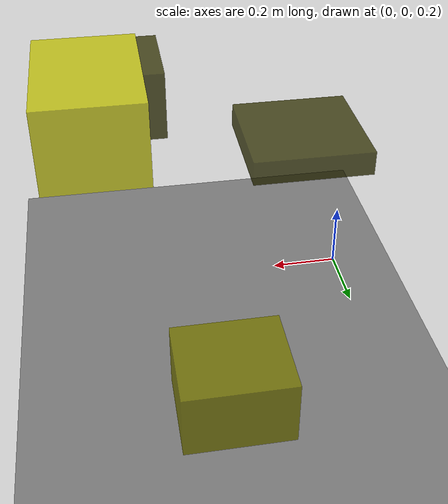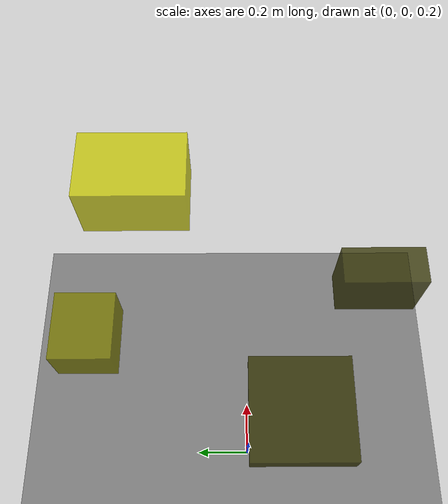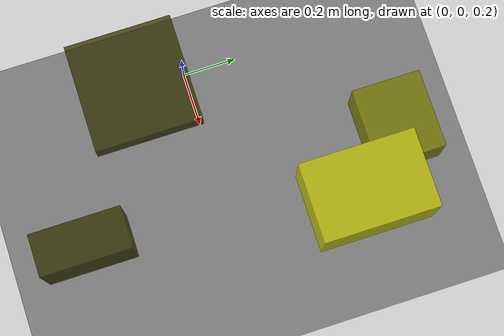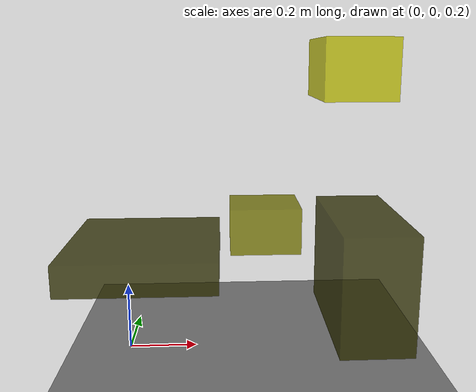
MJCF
<?xml version="1.0"?>
<mujoco model="obstacle_scene">
  <compiler angle="radian" coordinate="local"/>
  <option timestep="0.001" gravity="0 0 -9.81"/>

  <asset>
    <material name="obstacle_mat" rgba="0.8 0.8 0.0 0.8"/>
    <material name="ground_mat" rgba="0.5 0.5 0.5 1"/>
  </asset>

  <worldbody>
    <!-- Ground plane -->
    <geom name="ground" type="plane" size="3 3 0.1" material="ground_mat"/>

    <!-- Obstacles -->
    <body name="obstacle_0" pos="0.576432 -0.500963 0.637618">
      <geom name="obs_0" type="box" size="0.072242 0.155619 0.119354" rgba="0.2 0.2 0.0 0.8"/>
    </body>
    <body name="obstacle_1" pos="0.455927 0.662238 0.385722">
      <geom name="obs_1" type="box" size="0.142776 0.125080 0.093613" rgba="0.5 0.5 0.0 0.8"/>
    </body>
    <body name="obstacle_2" pos="0.741305 0.387585 1.032448">
      <geom name="obs_2" type="box" size="0.123068 0.180238 0.103663" rgba="0.8 0.8 0.0 0.8"/>
    </body>
    <body name="obstacle_3" pos="0.083711 -0.188010 0.568307">
      <geom name="obs_3" type="box" size="0.193095 0.190707 0.040388" rgba="0.2 0.2 0.0 0.8"/>
    </body>
  </worldbody>
</mujoco>
